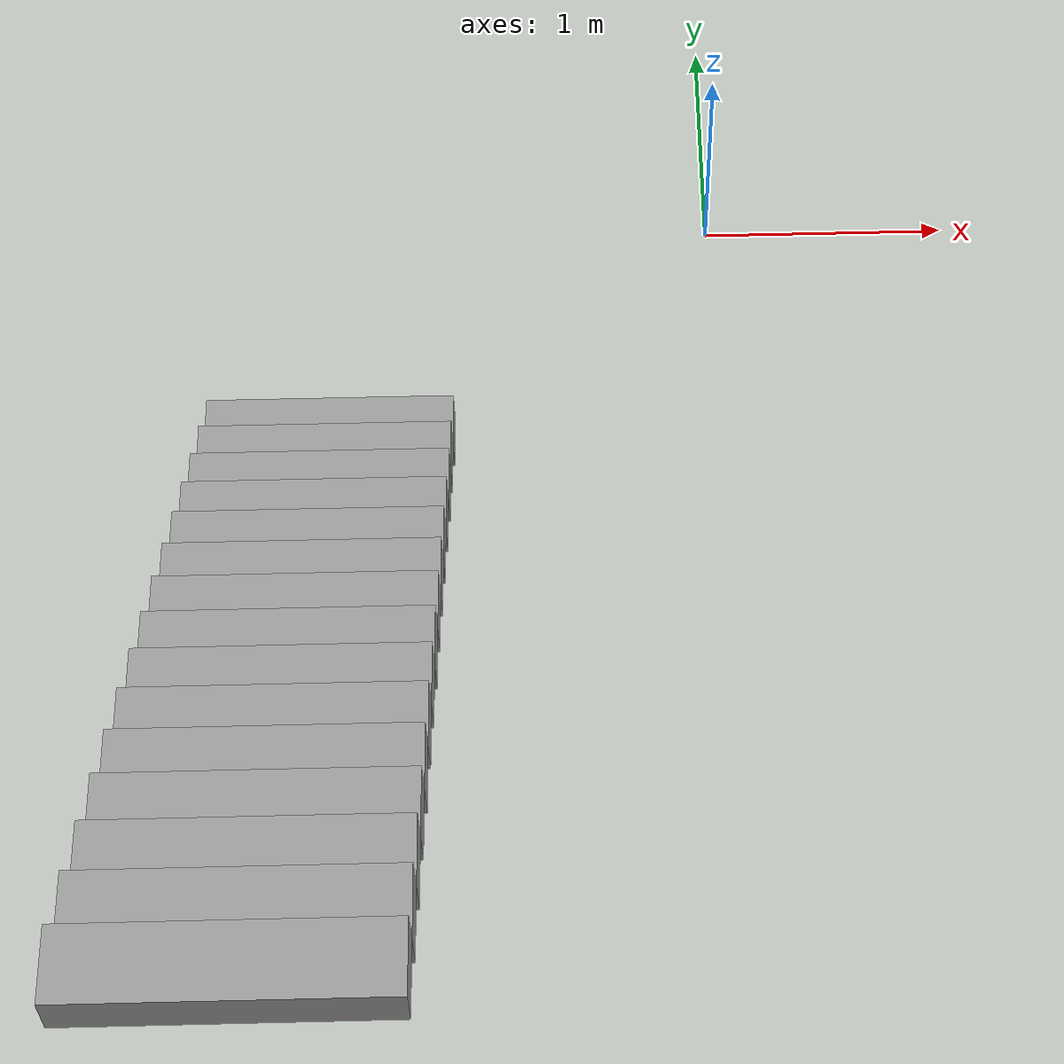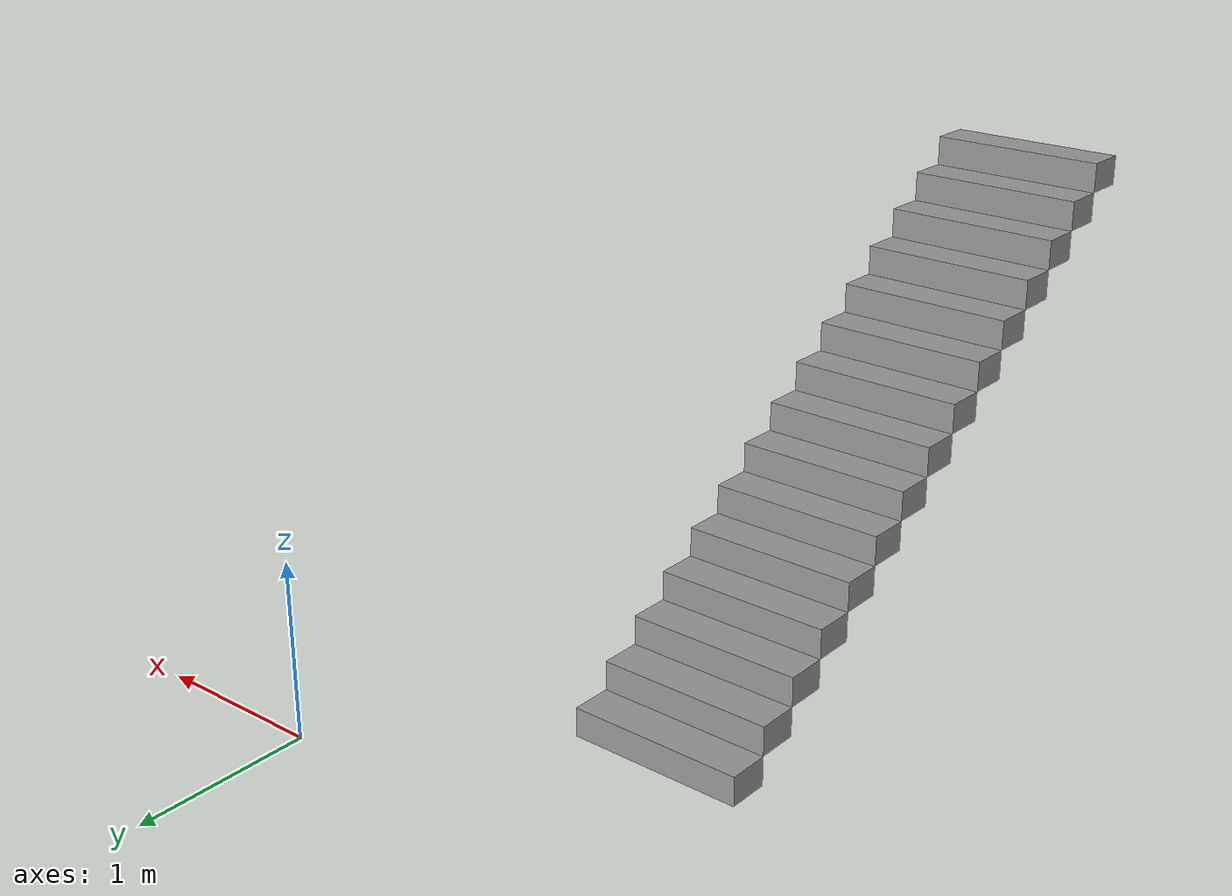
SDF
<?xml version='1.0'?>
<sdf version='1.7'>
  <model name='stair3'>
    <pose>-1.035 -2.205 0 0 -0 0</pose>
    <link name='Stairs_0'>
      <visual name='Stairs_0_Visual_0'>
        <pose>-0.535 1.17833 0.083333 0 -0 0</pose>
        <geometry>
          <box>
            <size>1 0.233333 0.166667</size>
          </box>
        </geometry>
        <material>
          <script>
            <uri>file://media/materials/scripts/gazebo.material</uri>
            <name>Gazebo/Grey</name>
          </script>
          <ambient>1 1 1 1</ambient>
        </material>
        <meta>
          <layer>0</layer>
        </meta>
      </visual>
      <collision name='Stairs_0_Collision_0'>
        <geometry>
          <box>
            <size>1 0.233333 0.166667</size>
          </box>
        </geometry>
        <pose>-0.535 1.17833 0.083333 0 -0 0</pose>
      </collision>
      <visual name='Stairs_0_Visual_1'>
        <pose>-0.535 0.945 0.25 0 -0 0</pose>
        <geometry>
          <box>
            <size>1 0.233333 0.166667</size>
          </box>
        </geometry>
        <material>
          <script>
            <uri>file://media/materials/scripts/gazebo.material</uri>
            <name>Gazebo/Grey</name>
          </script>
          <ambient>1 1 1 1</ambient>
        </material>
        <meta>
          <layer>0</layer>
        </meta>
      </visual>
      <collision name='Stairs_0_Collision_1'>
        <geometry>
          <box>
            <size>1 0.233333 0.166667</size>
          </box>
        </geometry>
        <pose>-0.535 0.945 0.25 0 -0 0</pose>
      </collision>
      <visual name='Stairs_0_Visual_2'>
        <pose>-0.535 0.711667 0.416667 0 -0 0</pose>
        <geometry>
          <box>
            <size>1 0.233333 0.166667</size>
          </box>
        </geometry>
        <material>
          <script>
            <uri>file://media/materials/scripts/gazebo.material</uri>
            <name>Gazebo/Grey</name>
          </script>
          <ambient>1 1 1 1</ambient>
        </material>
        <meta>
          <layer>0</layer>
        </meta>
      </visual>
      <collision name='Stairs_0_Collision_2'>
        <geometry>
          <box>
            <size>1 0.233333 0.166667</size>
          </box>
        </geometry>
        <pose>-0.535 0.711667 0.416667 0 -0 0</pose>
      </collision>
      <visual name='Stairs_0_Visual_3'>
        <pose>-0.535 0.478333 0.583333 0 -0 0</pose>
        <geometry>
          <box>
            <size>1 0.233333 0.166667</size>
          </box>
        </geometry>
        <material>
          <script>
            <uri>file://media/materials/scripts/gazebo.material</uri>
            <name>Gazebo/Grey</name>
          </script>
          <ambient>1 1 1 1</ambient>
        </material>
        <meta>
          <layer>0</layer>
        </meta>
      </visual>
      <collision name='Stairs_0_Collision_3'>
        <geometry>
          <box>
            <size>1 0.233333 0.166667</size>
          </box>
        </geometry>
        <pose>-0.535 0.478333 0.583333 0 -0 0</pose>
      </collision>
      <visual name='Stairs_0_Visual_4'>
        <pose>-0.535 0.245 0.75 0 -0 0</pose>
        <geometry>
          <box>
            <size>1 0.233333 0.166667</size>
          </box>
        </geometry>
        <material>
          <script>
            <uri>file://media/materials/scripts/gazebo.material</uri>
            <name>Gazebo/Grey</name>
          </script>
          <ambient>1 1 1 1</ambient>
        </material>
        <meta>
          <layer>0</layer>
        </meta>
      </visual>
      <collision name='Stairs_0_Collision_4'>
        <geometry>
          <box>
            <size>1 0.233333 0.166667</size>
          </box>
        </geometry>
        <pose>-0.535 0.245 0.75 0 -0 0</pose>
      </collision>
      <visual name='Stairs_0_Visual_5'>
        <pose>-0.535 0.011667 0.916667 0 -0 0</pose>
        <geometry>
          <box>
            <size>1 0.233333 0.166667</size>
          </box>
        </geometry>
        <material>
          <script>
            <uri>file://media/materials/scripts/gazebo.material</uri>
            <name>Gazebo/Grey</name>
          </script>
          <ambient>1 1 1 1</ambient>
        </material>
        <meta>
          <layer>0</layer>
        </meta>
      </visual>
      <collision name='Stairs_0_Collision_5'>
        <geometry>
          <box>
            <size>1 0.233333 0.166667</size>
          </box>
        </geometry>
        <pose>-0.535 0.011667 0.916667 0 -0 0</pose>
      </collision>
      <visual name='Stairs_0_Visual_6'>
        <pose>-0.535 -0.221667 1.08333 0 -0 0</pose>
        <geometry>
          <box>
            <size>1 0.233333 0.166667</size>
          </box>
        </geometry>
        <material>
          <script>
            <uri>file://media/materials/scripts/gazebo.material</uri>
            <name>Gazebo/Grey</name>
          </script>
          <ambient>1 1 1 1</ambient>
        </material>
        <meta>
          <layer>0</layer>
        </meta>
      </visual>
      <collision name='Stairs_0_Collision_6'>
        <geometry>
          <box>
            <size>1 0.233333 0.166667</size>
          </box>
        </geometry>
        <pose>-0.535 -0.221667 1.08333 0 -0 0</pose>
      </collision>
      <visual name='Stairs_0_Visual_7'>
        <pose>-0.535 -0.455 1.25 0 -0 0</pose>
        <geometry>
          <box>
            <size>1 0.233333 0.166667</size>
          </box>
        </geometry>
        <material>
          <script>
            <uri>file://media/materials/scripts/gazebo.material</uri>
            <name>Gazebo/Grey</name>
          </script>
          <ambient>1 1 1 1</ambient>
        </material>
        <meta>
          <layer>0</layer>
        </meta>
      </visual>
      <collision name='Stairs_0_Collision_7'>
        <geometry>
          <box>
            <size>1 0.233333 0.166667</size>
          </box>
        </geometry>
        <pose>-0.535 -0.455 1.25 0 -0 0</pose>
      </collision>
      <visual name='Stairs_0_Visual_8'>
        <pose>-0.535 -0.688333 1.41667 0 -0 0</pose>
        <geometry>
          <box>
            <size>1 0.233333 0.166667</size>
          </box>
        </geometry>
        <material>
          <script>
            <uri>file://media/materials/scripts/gazebo.material</uri>
            <name>Gazebo/Grey</name>
          </script>
          <ambient>1 1 1 1</ambient>
        </material>
        <meta>
          <layer>0</layer>
        </meta>
      </visual>
      <collision name='Stairs_0_Collision_8'>
        <geometry>
          <box>
            <size>1 0.233333 0.166667</size>
          </box>
        </geometry>
        <pose>-0.535 -0.688333 1.41667 0 -0 0</pose>
      </collision>
      <visual name='Stairs_0_Visual_9'>
        <pose>-0.535 -0.921667 1.58333 0 -0 0</pose>
        <geometry>
          <box>
            <size>1 0.233333 0.166667</size>
          </box>
        </geometry>
        <material>
          <script>
            <uri>file://media/materials/scripts/gazebo.material</uri>
            <name>Gazebo/Grey</name>
          </script>
          <ambient>1 1 1 1</ambient>
        </material>
        <meta>
          <layer>0</layer>
        </meta>
      </visual>
      <collision name='Stairs_0_Collision_9'>
        <geometry>
          <box>
            <size>1 0.233333 0.166667</size>
          </box>
        </geometry>
        <pose>-0.535 -0.921667 1.58333 0 -0 0</pose>
      </collision>
      <visual name='Stairs_0_Visual_10'>
        <pose>-0.535 -1.155 1.75 0 -0 0</pose>
        <geometry>
          <box>
            <size>1 0.233333 0.166667</size>
          </box>
        </geometry>
        <material>
          <script>
            <uri>file://media/materials/scripts/gazebo.material</uri>
            <name>Gazebo/Grey</name>
          </script>
          <ambient>1 1 1 1</ambient>
        </material>
        <meta>
          <layer>0</layer>
        </meta>
      </visual>
      <collision name='Stairs_0_Collision_10'>
        <geometry>
          <box>
            <size>1 0.233333 0.166667</size>
          </box>
        </geometry>
        <pose>-0.535 -1.155 1.75 0 -0 0</pose>
      </collision>
      <visual name='Stairs_0_Visual_11'>
        <pose>-0.535 -1.38833 1.91667 0 -0 0</pose>
        <geometry>
          <box>
            <size>1 0.233333 0.166667</size>
          </box>
        </geometry>
        <material>
          <script>
            <uri>file://media/materials/scripts/gazebo.material</uri>
            <name>Gazebo/Grey</name>
          </script>
          <ambient>1 1 1 1</ambient>
        </material>
        <meta>
          <layer>0</layer>
        </meta>
      </visual>
      <collision name='Stairs_0_Collision_11'>
        <geometry>
          <box>
            <size>1 0.233333 0.166667</size>
          </box>
        </geometry>
        <pose>-0.535 -1.38833 1.91667 0 -0 0</pose>
      </collision>
      <visual name='Stairs_0_Visual_12'>
        <pose>-0.535 -1.62167 2.08333 0 -0 0</pose>
        <geometry>
          <box>
            <size>1 0.233333 0.166667</size>
          </box>
        </geometry>
        <material>
          <script>
            <uri>file://media/materials/scripts/gazebo.material</uri>
            <name>Gazebo/Grey</name>
          </script>
          <ambient>1 1 1 1</ambient>
        </material>
        <meta>
          <layer>0</layer>
        </meta>
      </visual>
      <collision name='Stairs_0_Collision_12'>
        <geometry>
          <box>
            <size>1 0.233333 0.166667</size>
          </box>
        </geometry>
        <pose>-0.535 -1.62167 2.08333 0 -0 0</pose>
      </collision>
      <visual name='Stairs_0_Visual_13'>
        <pose>-0.535 -1.855 2.25 0 -0 0</pose>
        <geometry>
          <box>
            <size>1 0.233333 0.166667</size>
          </box>
        </geometry>
        <material>
          <script>
            <uri>file://media/materials/scripts/gazebo.material</uri>
            <name>Gazebo/Grey</name>
          </script>
          <ambient>1 1 1 1</ambient>
        </material>
        <meta>
          <layer>0</layer>
        </meta>
      </visual>
      <collision name='Stairs_0_Collision_13'>
        <geometry>
          <box>
            <size>1 0.233333 0.166667</size>
          </box>
        </geometry>
        <pose>-0.535 -1.855 2.25 0 -0 0</pose>
      </collision>
      <visual name='Stairs_0_Visual_14'>
        <pose>-0.535 -2.08833 2.41667 0 -0 0</pose>
        <geometry>
          <box>
            <size>1 0.233333 0.166667</size>
          </box>
        </geometry>
        <material>
          <script>
            <uri>file://media/materials/scripts/gazebo.material</uri>
            <name>Gazebo/Grey</name>
          </script>
          <ambient>1 1 1 1</ambient>
        </material>
        <meta>
          <layer>0</layer>
        </meta>
      </visual>
      <collision name='Stairs_0_Collision_14'>
        <geometry>
          <box>
            <size>1 0.233333 0.166667</size>
          </box>
        </geometry>
        <pose>-0.535 -2.08833 2.41667 0 -0 0</pose>
      </collision>
    </link>
    <static>1</static>
  </model>
</sdf>
